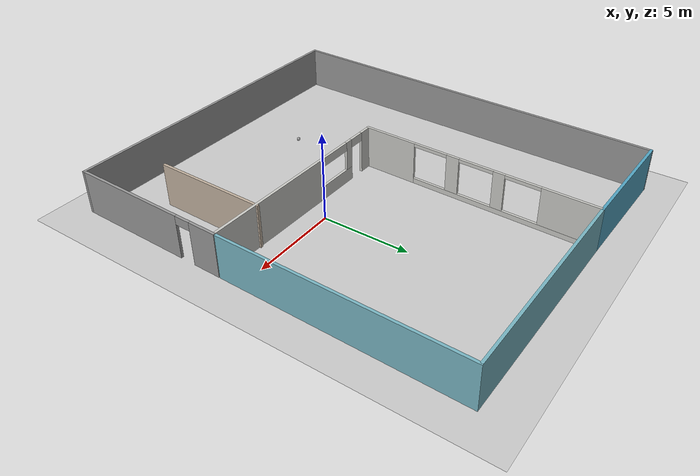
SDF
<sdf version="1.6">
 <world name="default">
  <light name="sun" type="directional">
   <pose>0 0 10 0 -0 0</pose>
   <diffuse>0.8 0.8 0.8 1</diffuse>
   <specular>0.2 0.2 0.2 1</specular>
   <attenuation>
    <range>1000</range>
    <constant>0.9</constant>
    <linear>0.01</linear>
    <quadratic>0.001</quadratic>
   </attenuation>
   <direction>-0.5 0.1 -0.9</direction>
  </light>
  <model name="ground_plane">
   <static>1</static>
   <link name="link">
    <collision name="collision">
     <geometry><plane><normal>0 0 1</normal><size>100 100</size></plane></geometry>
     <surface><friction><ode><mu>100</mu><mu2>50</mu2></ode></friction></surface>
    </collision>
    <visual name="visual">
     <cast_shadows>0</cast_shadows>
     <geometry><plane><normal>0 0 1</normal><size>100 100</size></plane></geometry>
     <material>
      <script><uri>file://media/materials/scripts/gazebo.material</uri><name>Gazebo/Grey</name></script>
     </material>
    </visual>
   </link>
  </model>
  <gravity>0 0 -9.8</gravity>
  <magnetic_field>6e-06 2.3e-05 -4.2e-05</magnetic_field>
  <atmosphere type="adiabatic"/>
  <physics name="default_physics" default="0" type="ode">
   <max_step_size>0.001</max_step_size>
   <real_time_factor>1</real_time_factor>
   <real_time_update_rate>1000</real_time_update_rate>
  </physics>
  <scene><ambient>0.4 0.4 0.4 1</ambient><background>0.7 0.7 0.7 1</background><shadows>1</shadows></scene>
  <spherical_coordinates>
   <surface_model>EARTH_WGS84</surface_model>
   <latitude_deg>0</latitude_deg>
   <longitude_deg>0</longitude_deg>
   <elevation>0</elevation>
   <heading_deg>0</heading_deg>
  </spherical_coordinates>
  <model name="mybuilding">
   <pose>-2.8005 1.12692 0 0 -0 1.55749</pose>
   <link name="Wall_29">
    <pose>-2.31245 -3.25345 0 0 -0 1.5708</pose>
    <visual name="Wall_29_Visual_0">
     <pose>-2.10464 0 1.25 0 -0 0</pose>
     <geometry><box><size>7.91873 0.15 2.5</size></box></geometry>
     <material>
      <script><uri>file://media/materials/scripts/gazebo.material</uri><name>Gazebo/CeilingTiled</name></script>
      <ambient>0.47451 0.713726 0.764706 1</ambient>
     </material>
     <meta><layer>0</layer></meta>
    </visual>
    <collision name="Wall_29_Collision_0">
     <geometry><box><size>7.91873 0.15 2.5</size></box></geometry>
     <pose>-2.10464 0 1.25 0 -0 0</pose>
    </collision>
    <visual name="Wall_29_Visual_1">
     <pose>5.6459 0 1.25 0 -0 0</pose>
     <geometry><box><size>0.836189 0.15 2.5</size></box></geometry>
     <material>
      <script><uri>file://media/materials/scripts/gazebo.material</uri><name>Gazebo/CeilingTiled</name></script>
      <ambient>0.47451 0.713726 0.764706 1</ambient>
     </material>
     <meta><layer>0</layer></meta>
    </visual>
    <collision name="Wall_29_Collision_1">
     <geometry><box><size>0.836189 0.15 2.5</size></box></geometry>
     <pose>5.6459 0 1.25 0 -0 0</pose>
    </collision>
    <visual name="Wall_29_Visual_2">
     <pose>3.09127 0 0.4 0 -0 0</pose>
     <geometry><box><size>2.47308 0.15 0.8</size></box></geometry>
     <material>
      <script><uri>file://media/materials/scripts/gazebo.material</uri><name>Gazebo/CeilingTiled</name></script>
      <ambient>0.47451 0.713726 0.764706 1</ambient>
     </material>
     <meta><layer>0</layer></meta>
    </visual>
    <collision name="Wall_29_Collision_2">
     <geometry><box><size>2.47308 0.15 0.8</size></box></geometry>
     <pose>3.09127 0 0.4 0 -0 0</pose>
    </collision>
    <visual name="Wall_29_Visual_3">
     <pose>4.10266 0 1.65 0 -0 0</pose>
     <geometry><box><size>0.450302 0.15 1.7</size></box></geometry>
     <material>
      <script><uri>file://media/materials/scripts/gazebo.material</uri><name>Gazebo/CeilingTiled</name></script>
      <ambient>0.47451 0.713726 0.764706 1</ambient>
     </material>
     <meta><layer>0</layer></meta>
    </visual>
    <collision name="Wall_29_Collision_3">
     <geometry><box><size>0.450302 0.15 1.7</size></box></geometry>
     <pose>4.10266 0 1.65 0 -0 0</pose>
    </collision>
    <visual name="Wall_29_Visual_4">
     <pose>4.77781 0 2.25 0 -0 0</pose>
     <geometry><box><size>0.9 0.15 0.5</size></box></geometry>
     <material>
      <script><uri>file://media/materials/scripts/gazebo.material</uri><name>Gazebo/CeilingTiled</name></script>
      <ambient>0.47451 0.713726 0.764706 1</ambient>
     </material>
     <meta><layer>0</layer></meta>
    </visual>
    <collision name="Wall_29_Collision_4">
     <geometry><box><size>0.9 0.15 0.5</size></box></geometry>
     <pose>4.77781 0 2.25 0 -0 0</pose>
    </collision>
    <visual name="Wall_29_Visual_5">
     <pose>2.86612 0 2.25 0 -0 0</pose>
     <geometry><box><size>2.02278 0.15 0.5</size></box></geometry>
     <material>
      <script><uri>file://media/materials/scripts/gazebo.material</uri><name>Gazebo/CeilingTiled</name></script>
      <ambient>0.47451 0.713726 0.764706 1</ambient>
     </material>
     <meta><layer>0</layer></meta>
    </visual>
    <collision name="Wall_29_Collision_5">
     <geometry><box><size>2.02278 0.15 0.5</size></box></geometry>
     <pose>2.86612 0 2.25 0 -0 0</pose>
    </collision>
   </link>
   <link name="Wall_30">
    <pose>4.51555 2.69505 0 0 0 -0.005931</pose>
    <visual name="Wall_30_Visual_0">
     <pose>-5.3172 0 1.25 0 -0 0</pose>
     <geometry><box><size>3.1716 0.15 2.5</size></box></geometry>
     <material>
      <script><uri>file://media/materials/scripts/gazebo.material</uri><name>Gazebo/CeilingTiled</name></script>
      <ambient>1 1 1 1</ambient>
     </material>
     <meta><layer>0</layer></meta>
    </visual>
    <collision name="Wall_30_Collision_0">
     <geometry><box><size>3.1716 0.15 2.5</size></box></geometry>
     <pose>-5.3172 0 1.25 0 -0 0</pose>
    </collision>
    <visual name="Wall_30_Visual_1">
     <pose>1.5858 0 0.15 0 -0 0</pose>
     <geometry><box><size>10.6344 0.15 0.3</size></box></geometry>
     <material>
      <script><uri>file://media/materials/scripts/gazebo.material</uri><name>Gazebo/CeilingTiled</name></script>
      <ambient>1 1 1 1</ambient>
     </material>
     <meta><layer>0</layer></meta>
    </visual>
    <collision name="Wall_30_Collision_1">
     <geometry><box><size>10.6344 0.15 0.3</size></box></geometry>
     <pose>1.5858 0 0.15 0 -0 0</pose>
    </collision>
    <visual name="Wall_30_Visual_2">
     <pose>-1.35588 0 1.4 0 -0 0</pose>
     <geometry><box><size>0.751028 0.15 2.2</size></box></geometry>
     <material>
      <script><uri>file://media/materials/scripts/gazebo.material</uri><name>Gazebo/CeilingTiled</name></script>
      <ambient>1 1 1 1</ambient>
     </material>
     <meta><layer>0</layer></meta>
    </visual>
    <collision name="Wall_30_Collision_2">
     <geometry><box><size>0.751028 0.15 2.2</size></box></geometry>
     <pose>-1.35588 0 1.4 0 -0 0</pose>
    </collision>
    <visual name="Wall_30_Visual_3">
     <pose>1.35469 0 1.4 0 -0 0</pose>
     <geometry><box><size>0.670115 0.15 2.2</size></box></geometry>
     <material>
      <script><uri>file://media/materials/scripts/gazebo.material</uri><name>Gazebo/CeilingTiled</name></script>
      <ambient>1 1 1 1</ambient>
     </material>
     <meta><layer>0</layer></meta>
    </visual>
    <collision name="Wall_30_Collision_3">
     <geometry><box><size>0.670115 0.15 2.2</size></box></geometry>
     <pose>1.35469 0 1.4 0 -0 0</pose>
    </collision>
    <visual name="Wall_30_Visual_4">
     <pose>5.29637 0 1.4 0 -0 0</pose>
     <geometry><box><size>3.21326 0.15 2.2</size></box></geometry>
     <material>
      <script><uri>file://media/materials/scripts/gazebo.material</uri><name>Gazebo/CeilingTiled</name></script>
      <ambient>1 1 1 1</ambient>
     </material>
     <meta><layer>0</layer></meta>
    </visual>
    <collision name="Wall_30_Collision_4">
     <geometry><box><size>3.21326 0.15 2.2</size></box></geometry>
     <pose>5.29637 0 1.4 0 -0 0</pose>
    </collision>
    <visual name="Wall_30_Visual_5">
     <pose>-2.7314 0 2.4 0 -0 0</pose>
     <geometry><box><size>2 0.15 0.2</size></box></geometry>
     <material>
      <script><uri>file://media/materials/scripts/gazebo.material</uri><name>Gazebo/CeilingTiled</name></script>
      <ambient>1 1 1 1</ambient>
     </material>
     <meta><layer>0</layer></meta>
    </visual>
    <collision name="Wall_30_Collision_5">
     <geometry><box><size>2 0.15 0.2</size></box></geometry>
     <pose>-2.7314 0 2.4 0 -0 0</pose>
    </collision>
    <visual name="Wall_30_Visual_6">
     <pose>0.01963 0 2.4 0 -0 0</pose>
     <geometry><box><size>2 0.15 0.2</size></box></geometry>
     <material>
      <script><uri>file://media/materials/scripts/gazebo.material</uri><name>Gazebo/CeilingTiled</name></script>
      <ambient>1 1 1 1</ambient>
     </material>
     <meta><layer>0</layer></meta>
    </visual>
    <collision name="Wall_30_Collision_6">
     <geometry><box><size>2 0.15 0.2</size></box></geometry>
     <pose>0.01963 0 2.4 0 -0 0</pose>
    </collision>
    <visual name="Wall_30_Visual_7">
     <pose>2.68974 0 2.4 0 -0 0</pose>
     <geometry><box><size>2 0.15 0.2</size></box></geometry>
     <material>
      <script><uri>file://media/materials/scripts/gazebo.material</uri><name>Gazebo/CeilingTiled</name></script>
      <ambient>1 1 1 1</ambient>
     </material>
     <meta><layer>0</layer></meta>
    </visual>
    <collision name="Wall_30_Collision_7">
     <geometry><box><size>2 0.15 0.2</size></box></geometry>
     <pose>2.68974 0 2.4 0 -0 0</pose>
    </collision>
   </link>
   <link name="Wall_44">
    <collision name="Wall_44_Collision">
     <geometry><box><size>12.094 0.15 2.5</size></box></geometry>
     <pose>0 0 1.25 0 -0 0</pose>
    </collision>
    <visual name="Wall_44_Visual">
     <pose>0 0 1.25 0 -0 0</pose>
     <geometry><box><size>12.094 0.15 2.5</size></box></geometry>
     <material>
      <script><uri>file://media/materials/scripts/gazebo.material</uri><name>Gazebo/Grey</name></script>
      <ambient>0.47451 0.713726 0.764706 1</ambient>
     </material>
     <meta><layer>0</layer></meta>
    </visual>
    <pose>11.3435 -3.31745 0 0 0 -1.5708</pose>
   </link>
   <link name="Wall_46">
    <collision name="Wall_46_Collision">
     <geometry><box><size>13.6168 0.15 2.5</size></box></geometry>
     <pose>0 0 1.25 0 -0 0</pose>
    </collision>
    <visual name="Wall_46_Visual">
     <pose>0 0 1.25 0 -0 0</pose>
     <geometry><box><size>13.6168 0.15 2.5</size></box></geometry>
     <material>
      <script><uri>file://media/materials/scripts/gazebo.material</uri><name>Gazebo/Grey</name></script>
      <ambient>0.47451 0.713726 0.764706 1</ambient>
     </material>
     <meta><layer>0</layer></meta>
    </visual>
    <pose>4.61005 -9.28945 0 0 -0 3.14159</pose>
   </link>
   <link name="Wall_51">
    <collision name="Wall_51_Collision">
     <geometry><box><size>6.78449 0.15 2.5</size></box></geometry>
     <pose>0 0 1.25 0 -0 0</pose>
    </collision>
    <visual name="Wall_51_Visual">
     <pose>0 0 1.25 0 -0 0</pose>
     <geometry><box><size>6.78449 0.15 2.5</size></box></geometry>
     <material>
      <script><uri>file://media/materials/scripts/gazebo.material</uri><name>Gazebo/Grey</name></script>
      <ambient>0.321569 0.647059 0.764706 1</ambient>
     </material>
     <meta><layer>0</layer></meta>
    </visual>
    <pose>11.384 5.97155 0 0 -0 1.55859</pose>
   </link>
   <link name="Wall_52">
    <collision name="Wall_52_Collision">
     <geometry><box><size>23 0.15 2.5</size></box></geometry>
     <pose>0 0 1.25 0 -0 0</pose>
    </collision>
    <visual name="Wall_52_Visual">
     <pose>0 0 1.25 0 -0 0</pose>
     <geometry><box><size>23 0.15 2.5</size></box></geometry>
     <material>
      <script><uri>file://media/materials/scripts/gazebo.material</uri><name>Gazebo/Grey</name></script>
      <ambient>1 1 1 1</ambient>
     </material>
     <meta><layer>0</layer></meta>
    </visual>
    <pose>-0.000454 9.28855 0 0 -0 3.14159</pose>
   </link>
   <link name="Wall_53">
    <collision name="Wall_53_Collision">
     <geometry><box><size>18.728 0.15 2.5</size></box></geometry>
     <pose>0 0 1.25 0 -0 0</pose>
    </collision>
    <visual name="Wall_53_Visual">
     <pose>0 0 1.25 0 -0 0</pose>
     <geometry><box><size>18.728 0.15 2.5</size></box></geometry>
     <material>
      <script><uri>file://media/materials/scripts/gazebo.material</uri><name>Gazebo/Grey</name></script>
      <ambient>1 1 1 1</ambient>
     </material>
     <meta><layer>0</layer></meta>
    </visual>
    <pose>-11.4255 -0.000454 0 0 0 -1.5708</pose>
   </link>
   <link name="Wall_54">
    <pose>-6.87545 -9.28945 0 0 -0 0</pose>
    <visual name="Wall_54_Visual_0">
     <pose>-1.25586 0 1.25 0 -0 0</pose>
     <geometry><box><size>6.73829 0.15 2.5</size></box></geometry>
     <material>
      <script><uri>file://media/materials/scripts/gazebo.material</uri><name>Gazebo/Grey</name></script>
      <ambient>1 1 1 1</ambient>
     </material>
     <meta><layer>0</layer></meta>
    </visual>
    <collision name="Wall_54_Collision_0">
     <geometry><box><size>6.73829 0.15 2.5</size></box></geometry>
     <pose>-1.25586 0 1.25 0 -0 0</pose>
    </collision>
    <visual name="Wall_54_Visual_1">
     <pose>3.81914 0 1.25 0 -0 0</pose>
     <geometry><box><size>1.61171 0.15 2.5</size></box></geometry>
     <material>
      <script><uri>file://media/materials/scripts/gazebo.material</uri><name>Gazebo/Grey</name></script>
      <ambient>1 1 1 1</ambient>
     </material>
     <meta><layer>0</layer></meta>
    </visual>
    <collision name="Wall_54_Collision_1">
     <geometry><box><size>1.61171 0.15 2.5</size></box></geometry>
     <pose>3.81914 0 1.25 0 -0 0</pose>
    </collision>
    <visual name="Wall_54_Visual_2">
     <pose>2.56329 0 2.25 0 -0 0</pose>
     <geometry><box><size>0.9 0.15 0.5</size></box></geometry>
     <material>
      <script><uri>file://media/materials/scripts/gazebo.material</uri><name>Gazebo/Grey</name></script>
      <ambient>1 1 1 1</ambient>
     </material>
     <meta><layer>0</layer></meta>
    </visual>
    <collision name="Wall_54_Collision_2">
     <geometry><box><size>0.9 0.15 0.5</size></box></geometry>
     <pose>2.56329 0 2.25 0 -0 0</pose>
    </collision>
   </link>
   <link name="Wall_56">
    <collision name="Wall_56_Collision">
     <geometry><box><size>6.5 0.15 2.5</size></box></geometry>
     <pose>0 0 1.25 0 -0 0</pose>
    </collision>
    <visual name="Wall_56_Visual">
     <pose>0 0 1.25 0 -0 0</pose>
     <geometry><box><size>6.5 0.15 2.5</size></box></geometry>
     <material>
      <script><uri>file://media/materials/scripts/gazebo.material</uri><name>Gazebo/Grey</name></script>
      <ambient>0.764706 0.701961 0.631373 1</ambient>
     </material>
     <meta><layer>0</layer></meta>
    </visual>
    <pose>-5.40105 -6.4923 0 0 -0 3.14159</pose>
   </link>
   <static>1</static>
  </model>
  <model name="my_ball">
   <link name="link_2">
    <inertial>
     <mass>1</mass>
     <inertia><ixx>0.1</ixx><ixy>0</ixy><ixz>0</ixz><iyy>0.1</iyy><iyz>0</iyz><izz>0.1</izz></inertia>
    </inertial>
    <visual name="visual">
     <geometry><sphere><radius>0.1</radius></sphere></geometry>
     <material>
      <lighting>1</lighting>
      <script><uri>file://media/materials/scripts/gazebo.material</uri><name>Gazebo/Grey</name></script>
      <shader type="pixel"><normal_map>__default__</normal_map></shader>
      <ambient>1 1 1 1</ambient>
      <diffuse>1 1 1 1</diffuse>
      <specular>1 1 1 1</specular>
      <emissive>1 1 1 1</emissive>
     </material>
    </visual>
    <collision name="collision">
     <geometry><sphere><radius>0.1</radius></sphere></geometry>
     <surface>
      <friction>
       <ode><mu>1</mu><mu2>1</mu2><fdir1>0 0 0</fdir1><slip1>0</slip1><slip2>0</slip2></ode>
       <torsional>
        <coefficient>1</coefficient>
        <patch_radius>0</patch_radius>
        <surface_radius>0</surface_radius>
        <use_patch_radius>1</use_patch_radius>
        <ode><slip>0</slip></ode>
       </torsional>
      </friction>
      <bounce><restitution_coefficient>0</restitution_coefficient><threshold>1e+06</threshold></bounce>
      <contact>
       <collide_without_contact>0</collide_without_contact>
       <collide_without_contact_bitmask>1</collide_without_contact_bitmask>
       <collide_bitmask>1</collide_bitmask>
       <ode>
        <soft_cfm>0</soft_cfm>
        <soft_erp>0.2</soft_erp>
        <kp>1e+13</kp>
        <kd>1</kd>
        <max_vel>0.01</max_vel>
        <min_depth>0</min_depth>
       </ode>
       <bullet>
        <split_impulse>1</split_impulse>
        <split_impulse_penetration_threshold>-0.01</split_impulse_penetration_threshold>
        <soft_cfm>0</soft_cfm>
        <soft_erp>0.2</soft_erp>
        <kp>1e+13</kp>
        <kd>1</kd>
       </bullet>
      </contact>
     </surface>
    </collision>
   </link>
   <static>0</static>
   <pose>-4.97501 -5.80262 0.5 0 -0 0</pose>
  </model>
 </world>
</sdf>
